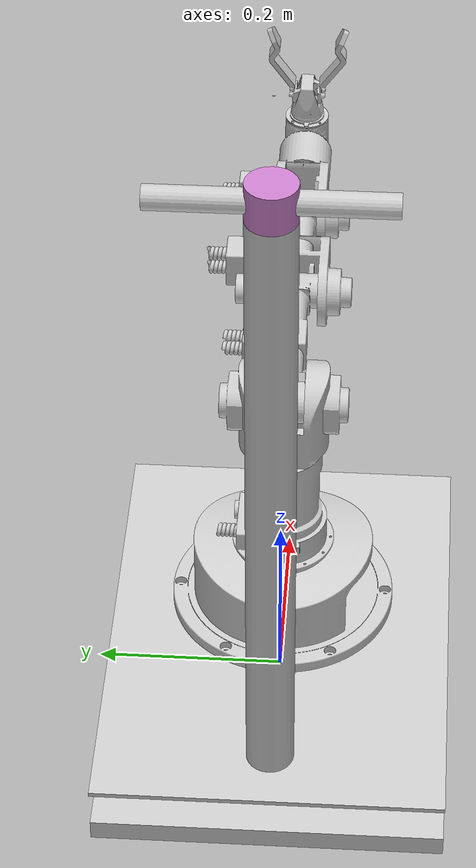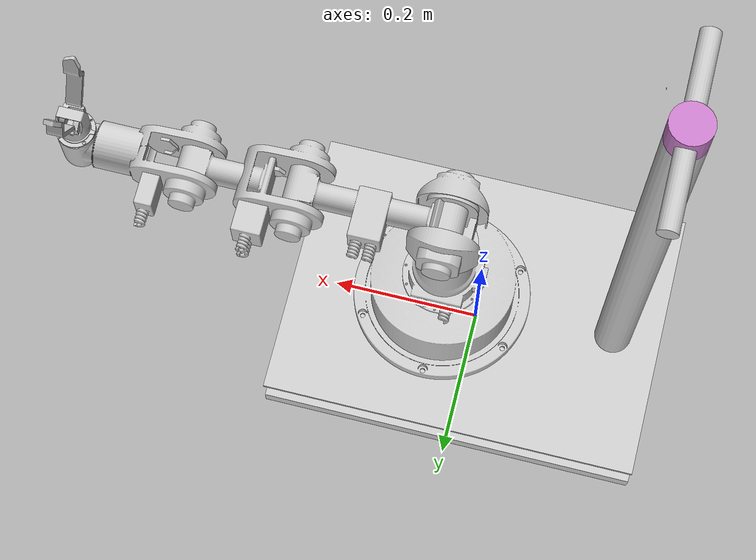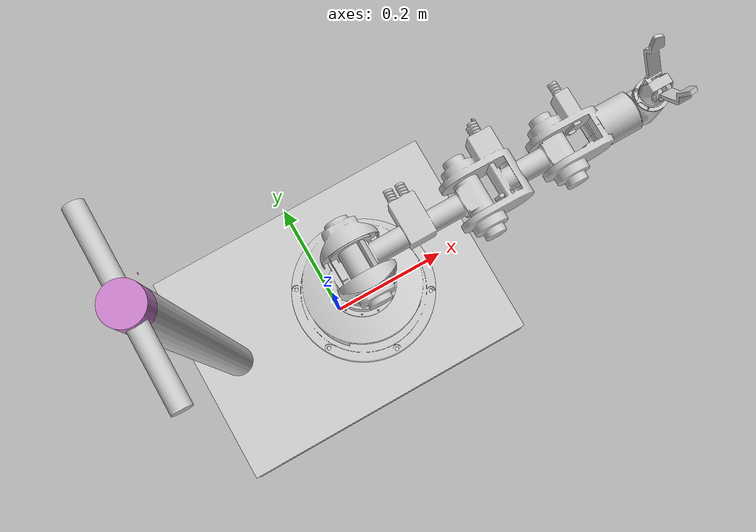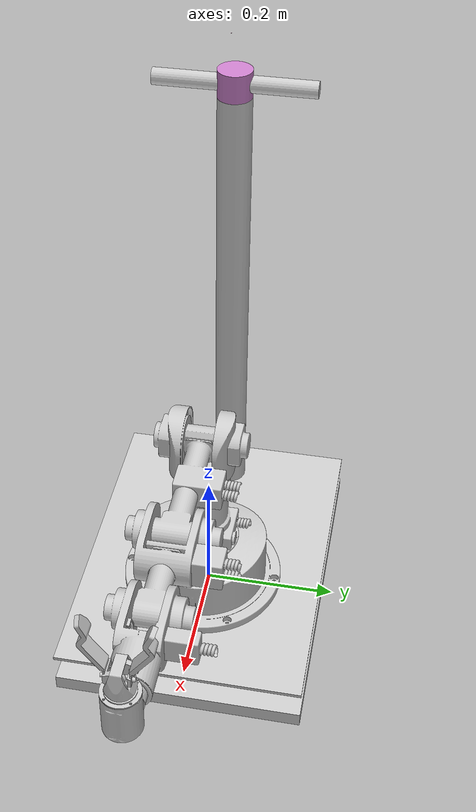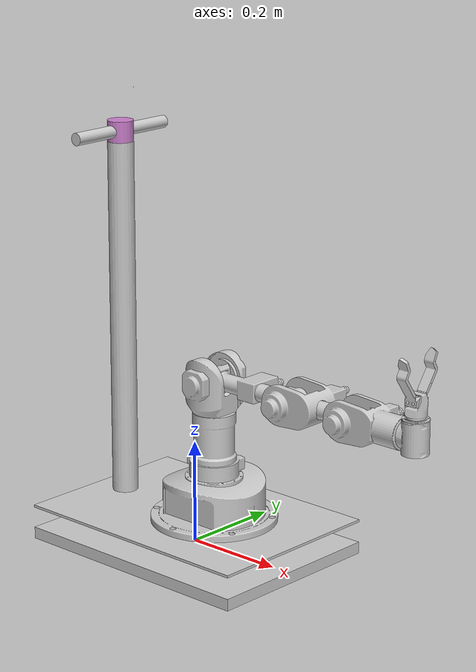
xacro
<?xml version="1.0"?>

<robot xmlns:sensor="http://playerstage.sourceforge.net/gazebo/xmlschema/#sensor"
  xmlns:controller="http://playerstage.sourceforge.net/gazebo/xmlschema/#controller"
  xmlns:interface="http://playerstage.sourceforge.net/gazebo/xmlschema/#interface"
  xmlns:xacro="http://ros.org/wiki/xacro"
  name="kurtana">

  <property name="M_PI" value="3.1415926535897931" />

  <!-- *** KURTana Rack *** -->

  <include filename="$(find kurt_description)/parts/kurtana_rack.urdf.xacro" />

  <!-- *** Microsoft Kinect *** -->

  <include filename="$(find kurt_description)/parts/kinect.urdf.xacro" />

  <joint name="kurtana_kinect_joint" type="fixed">
    <parent link="kurtana_pitchpole_link" />
    <child  link="kinect_link" />
    <origin xyz="${0.0730/2} 0 ${0.0720+kinect_gap}" rpy="0 0 0"/>
  </joint>

  <!-- *** Neuronics Katana Arm *** -->

  <include filename="$(find katana_description)/urdf/katana_450_6m90a_with_controlbox.urdf.xacro" />

  <joint name="kurtana_baseplate_controlbox_joint" type="fixed">
    <origin xyz="0.05 0 ${baseplate_height*1.5}" rpy="0 0 0" />
    <parent link="kurtana_baseplate_link" />
    <child link="katana_internal_controlbox_link" />
  </joint>

</robot>

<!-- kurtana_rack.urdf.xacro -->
<robot xmlns:sensor="http://playerstage.sourceforge.net/gazebo/xmlschema/#sensor"
       xmlns:controller="http://playerstage.sourceforge.net/gazebo/xmlschema/#controller"
       xmlns:interface="http://playerstage.sourceforge.net/gazebo/xmlschema/#interface"
       xmlns:xacro="http://ros.org/wiki/xacro"
       name="kurtana_rack">

  <property name="M_PI" value="3.1415926535897931" />

  <!-- all values measured by hand - maybe they need to be optimized later -->
  <property name="rackplate_length" value="0.51" />
  <property name="rackplate_width" value="0.368" />
  <property name="rackplate_height" value="0.023" />
  <property name="baseplate_length" value="0.51" />
  <property name="baseplate_width" value="0.368" />
  <property name="baseplate_height" value="0.005" />
  <property name="rackgap" value="0.055" />
  <property name="pole_radius" value="0.025"/>
  <property name="pole_length" value="0.70"/>
  <property name="poletop_radius" value="0.025"/>
  <property name="poletop_length" value="0.04"/>
  <property name="pitchpole_radius" value="0.012"/>
  <property name="pitchpole_length" value="0.23"/>
  <property name="kinect_length" value="0.30" />
  <property name="kinect_width" value="0.08" />
  <property name="kinect_height" value="0.08" />
  <property name="kinect_gap" value="0.015" />

<!-- *** KURTana Rack *** -->

  <link name="kurtana_rackplate_link">
      <visual>
        <origin xyz="0 0 0" rpy="0 0 0" />
        <geometry>
          <box size="${rackplate_length} ${rackplate_width} ${rackplate_height}" />
        </geometry>

        <material name="grey">
          <color rgba="0.8 0.8 0.8 1"/>
        </material>
      </visual>
      <collision>
        <origin xyz="0 0 0" rpy="0 0 0" />
        <geometry>
            <box size="${rackplate_length} ${rackplate_width} ${rackplate_height}" />
        </geometry>
      </collision>
      <inertial>
        <mass value="0.05" />
        <origin xyz="0.0 0.0 10.0" />
        <inertia ixx="1.0" ixy="0.0" ixz="0.0"
                 iyy="1.0" iyz="0.0"
                 izz="1.0" />
      </inertial>
  </link>

  <joint name="kurtana_baseplate_joint" type="fixed">
    <parent link="kurtana_rackplate_link"/>
    <child link="kurtana_baseplate_link"/>
    <origin xyz="0 0 0.055"/>
  </joint>

  <link name="kurtana_baseplate_link">
      <visual>
        <origin xyz="0 0 0" rpy="0 0 0" />
        <geometry>
          <box size="${baseplate_length} ${baseplate_width} ${baseplate_height}" />
        </geometry>

        <material name="grey" />
      </visual>
      <collision>
        <origin xyz="0 0 0" rpy="0 0 0" />
        <geometry>
          <box size="${baseplate_length} ${baseplate_width} ${baseplate_height}" />
        </geometry>
      </collision>
  </link>

   <joint name="kurtana_pole_joint" type="fixed">
    <parent link="kurtana_baseplate_link"/>
    <child link="kurtana_pole_link"/>
    <origin xyz="-0.19 0 0"/>
   </joint>

  <link name="kurtana_pole_link">
      <visual>
        <origin xyz="0 0 ${pole_length/2}" rpy="0 0 0" />
        <geometry>
         <cylinder radius="${pole_radius}" length="${pole_length}"/>
        </geometry>

        <material name="grey" />
      </visual>
      <collision>
        <origin xyz="0 0 ${pole_length/2}" rpy="0 0 0" />
        <geometry>
          <cylinder radius="${pole_radius}" length="${pole_length}"/>
        </geometry>
      </collision>
  </link>

  <joint name="kurtana_stretch_joint" type="prismatic">
    <parent link="kurtana_pole_link"/>
    <child link="kurtana_poletop_stretch_link"/>
    <origin xyz="0 0 ${pole_length}" rpy="0 0 0"/>
    <limit effort="1000.0" lower="0" upper="0.515" velocity="0.5"/>
    <origin rpy="0 0 0" xyz="0 0 0"/>
    <axis xyz="0 0 1"/>
  </joint>

 <link name="kurtana_poletop_stretch_link">
        <collision>
        <origin xyz="0 0 ${poletop_length/2}" rpy="0 0 0" />
        <geometry>
         <cylinder radius="${poletop_radius}" length="${poletop_length}"/>
        </geometry>
      </collision>
  </link>

   <joint name="kurtana_roll_joint" type="revolute">
    <parent link="kurtana_poletop_stretch_link"/>
    <child link="kurtana_poletop_roll_link"/>
    <origin xyz="0 0 0" rpy="0 0 0"/>
    <axis xyz="0 0 1"/>
    <limit effort="1000.0" lower="${-M_PI/2}" upper="${M_PI/2}" velocity="2.0"/>
  </joint>

  <link name="kurtana_poletop_roll_link">
      <visual>
        <origin xyz="0 0 ${poletop_length/2}" rpy="0 0 0" />
        <geometry>
          <cylinder radius="${poletop_radius}" length="${poletop_length}"/>
        </geometry>
        <material name="red">
          <color rgba="0.8 0.5 0.8 1"/>
        </material>
      </visual>
      <collision>
        <origin xyz="0 0 ${poletop_length/2}" rpy="0 0 0" />
        <geometry>
         <cylinder radius="${poletop_radius}" length="${poletop_length}"/>
        </geometry>
      </collision>
  </link>

  <joint name="kurtana_pitch_joint" type="revolute">
    <parent link="kurtana_poletop_roll_link" />
    <child link="kurtana_pitchpole_link" />
    <origin xyz="0 0 ${poletop_length/2}" rpy="0 0 0"/>
    <axis xyz="0 1 0"/>
    <limit effort="1000.0" lower="${-M_PI/2}" upper="${M_PI/2}" velocity="2.0"/>
  </joint>

  <link name="kurtana_pitchpole_link">
      <visual>
        <origin rpy="${-M_PI/2} 0 0" xyz="0 0 0"/>
        <geometry>
          <cylinder radius="${pitchpole_radius}" length="${pitchpole_length}"/>
        </geometry>
        <material name="grey" />
      </visual>
      <collision>
        <origin rpy="${-M_PI/2} 0 0" xyz="0 0 0"/>
        <geometry>
         <cylinder radius="${pitchpole_radius}" length="${pitchpole_length}"/>
        </geometry>
      </collision>
  </link>

</robot>

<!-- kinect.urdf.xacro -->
<robot xmlns:sensor="http://playerstage.sourceforge.net/gazebo/xmlschema/#sensor"
  xmlns:controller="http://playerstage.sourceforge.net/gazebo/xmlschema/#controller"
  xmlns:interface="http://playerstage.sourceforge.net/gazebo/xmlschema/#interface"
  xmlns:xacro="http://ros.org/wiki/xacro"
  name="kinect">

  <property name="M_PI" value="3.1415926535897931" />

  <link name="kinect_link">
    <inertial>
      <mass value="0.00001" />
      <origin xyz="0 0 0" />
      <inertia ixx="1.0" ixy="0.0" ixz="0.0"
        iyy="1.0" iyz="0.0"
        izz="1.0" />
    </inertial>

    <visual>
      <origin xyz=" 0 0 0 " rpy="0 0 0" />
      <geometry>
        <mesh filename="package://kurtana_description/meshes/kinect/kinect.dae"/>
      </geometry>
    </visual>

    <collision>
      <origin xyz="0.0 0.0 0.0" rpy="0 0 0" />
      <geometry>
        <box size="0.0730 .2760 0.0720"/>
      </geometry>
    </collision>

  </link>

  <joint name="kinect_depth_joint" type="fixed">
    <origin xyz="0 0.018 0" rpy="0 0 0" />
    <parent link="kinect_link" />
    <child link="kinect_depth_origin" />
  </joint>

  <link name="kinect_depth_origin">
    <inertial>
      <mass value="0.000001" />
      <origin xyz="0 0 0" />
      <inertia ixx="0.0001" ixy="0.0" ixz="0.0"
        iyy="0.0001" iyz="0.0"
        izz="0.0001" />
    </inertial>
  </link>

  <joint name="kinect_depth_optical_joint" type="fixed">
    <origin xyz="0 0 0" rpy="${-M_PI/2} 0 ${-M_PI/2}" />
    <parent link="kinect_depth_origin" />
    <child link="kinect_depth" />
  </joint>

  <link name="kinect_depth">
    <inertial>
      <mass value="0.000001" />
      <origin xyz="0 0 0" />
      <inertia ixx="0.0001" ixy="0.0" ixz="0.0"
        iyy="0.0001" iyz="0.0" izz="0.0001" />
    </inertial>
  </link>

  <joint name="kinect_rgb_joint" type="fixed">
    <origin xyz="0 -0.005 0" rpy="0 0 0" />
    <parent link="kinect_link" />
    <child link="kinect_rgb" />
  </joint>

  <link name="kinect_rgb">
    <inertial>
      <mass value="0.000001" />
      <origin xyz="0 0 0" />
      <inertia ixx="0.0001" ixy="0.0" ixz="0.0"
        iyy="0.0001" iyz="0.0"
        izz="0.0001" />
    </inertial>
  </link>

</robot>

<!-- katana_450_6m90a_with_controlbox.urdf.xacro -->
<robot xmlns:xacro="http://ros.org/wiki/xacro" name="katana_450_6m90a_with_controlbox">
  <xacro:include filename='$(find katana_description)/urdf/controlbox.urdf.xacro'/>
  <xacro:include filename='$(find katana_description)/urdf/katana_450_6m90a.urdf.xacro'/>
</robot>

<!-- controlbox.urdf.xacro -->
<robot xmlns:xacro="http://ros.org/wiki/xacro" >

  <xacro:property name="M_PI" value="3.1415926535897931" />
  <xacro:property name="controlbox_height" value="0.073" />

  <link name="katana_internal_controlbox_link">
    <visual>
      <origin xyz="0 0 0" rpy="0 0 ${M_PI}" />
      <geometry>
        <mesh filename="package://katana_description/meshes/katana/katana_internal_controlbox.stl" />
      </geometry>

      <material name="grey">
        <color rgba="0.8 0.8 0.8 1"/>
      </material>
    </visual>
    <collision>
      <origin xyz="0 0 0" rpy="0 0 ${M_PI}" />
      <geometry>
        <mesh filename="package://katana_description/meshes/katana/convex/katana_internal_controlbox_convex.stl" />
      </geometry>
    </collision>
    <inertial>
      <mass value="4.47057045" />
      <origin xyz="0.000024 -0.006508 0.030555" />
      <inertia ixx="0.013760086" ixy="-0.000000539" ixz="-0.000000442"
        iyy="0.015251808" iyz="0.000361753"
        izz="0.023409309" />
    </inertial>
  </link>

  <joint name="katana_base_joint" type="fixed">
    <parent link="katana_internal_controlbox_link"/>
    <child link="katana_base_link"/>
    <origin xyz="0 0 ${controlbox_height}"/>
  </joint>

  <gazebo reference="katana_internal_controlbox_link">
    <material value="Gazebo/Grey" />
  </gazebo>
</robot>

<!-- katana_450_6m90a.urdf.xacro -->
<robot xmlns:xacro="http://ros.org/wiki/xacro" name="katana_450_6m90a">

  <xacro:include filename='$(find katana_description)/urdf/transmissions.urdf.xacro'/>
  <xacro:include filename='$(find katana_description)/urdf/gazebo.urdf.xacro'/>

  <xacro:property name="M_PI" value="3.1415926535897931" />

  <!-- all values from the katana manual -->
  <xacro:property name="base_height" value="0.2015" />
  <xacro:property name="link2_length" value="0.19" />
  <xacro:property name="link3_length" value="0.139" />
  <xacro:property name="link4_length" value="0.1473" />
  <xacro:property name="link5_length" value="0.1505" />
  <xacro:property name="tool_frame_offset" value="0.11" />

  <!-- All inertial values (mass, center of mass and inertia tensor) have been
       calculated from the meshes using MeshLab -->
  <!-- the effort limits have been measured experimentally from the maximum effort the Gazebo controller
       uses in normal conditions -->

  <link name="katana_base_link">
    <visual>
      <origin xyz="0 0 0" rpy="0 0 0" />
      <geometry>
        <mesh filename="package://katana_description/meshes/katana/katana_base_link.stl"/>
      </geometry>

      <material name="grey">
        <color rgba="0.8 0.8 0.8 1"/>
      </material>
    </visual>
    <collision>
      <origin xyz="0 0 0" rpy="0 0 0" />
      <geometry>
        <mesh filename="package://katana_description/meshes/katana/convex/katana_base_link_convex.stl"/>
      </geometry>
    </collision>
    <inertial>
      <mass value="1.4047990875" />
      <origin xyz="-0.000327 0.000908 0.058457"/>
      <inertia ixx="0.003000703" ixy="0.000000864" ixz="-0.000011312"
        iyy="0.002974822" iyz="0.000036294"
        izz="0.001434739" />
    </inertial>
  </link>

  <joint name="katana_motor1_pan_joint" type="revolute">
    <!-- Joint 1 in Katana Manual -->
    <parent link="katana_base_link"/>
    <child link="katana_motor1_pan_link" />
    <origin xyz="0 0 ${base_height}" rpy="0 0 0"/>
    <axis xyz="0 0 1"/>
    <limit effort="1.5" lower="-3.025528" upper="2.891097" velocity="2.208932"/>
  </joint>

  <link name="katana_motor1_pan_link">
    <visual>
      <origin xyz="0 0 ${-base_height}" rpy="0 0 0" />
      <geometry>
        <mesh filename="package://katana_description/meshes/katana/katana_motor1_pan_link.stl"/>
      </geometry>

      <material name="grey" />
    </visual>
    <collision>
      <origin xyz="0 0 ${-base_height}" rpy="0 0 0" />
      <geometry>
        <mesh filename="package://katana_description/meshes/katana/convex/katana_motor1_pan_link_convex.stl"/>
      </geometry>
    </collision>
    <inertial>
      <mass value="0.74793301875" />
      <origin xyz="-0.000410 -0.001285 -0.016774" />
      <inertia ixx="0.001737241" ixy="0.000000421" ixz="0.000000650"
        iyy="0.000998782" iyz="0.000016114"
        izz="0.001349170" />
    </inertial>
  </link>

  <joint name="katana_motor2_lift_joint" type="revolute">
    <!-- Joint 2 in Katana Manual -->
    <parent link="katana_motor1_pan_link" />
    <child link="katana_motor2_lift_link" />
    <origin xyz="0 0 0" rpy="${M_PI/2} 0 0"/>
    <axis xyz="0 0 1"/>
    <limit effort="0.6" lower="-0.135228" upper="2.168572"  velocity="1.190799"/>
  </joint>

  <link name="katana_motor2_lift_link">
      <visual>
        <origin rpy="${-M_PI/2} 0 0" xyz="0 0 0"/>
        <geometry>
          <mesh filename="package://katana_description/meshes/katana/katana_motor2_lift_link.stl"/>
        </geometry>

        <material name="grey" />
      </visual>
      <collision>
        <origin rpy="${-M_PI/2} 0 0" xyz="0 0 0"/>
        <geometry>
          <mesh filename="package://katana_description/meshes/katana/convex/katana_motor2_lift_link_convex.stl"/>
        </geometry>
      </collision>
      <inertial>
        <mass value="0.80174941875" />
        <origin xyz="0.092420 0.005283 0.000172"/>
        <inertia ixx="0.000478252" ixy="0.000081166" ixz="0.000003961"
          iyy="0.004314636" iyz="0.000000332"
          izz="0.004625444" />
      </inertial>
  </link>

  <joint name="katana_motor3_lift_joint" type="revolute">
    <!-- Joint 3 in Katana Manual -->
    <parent link="katana_motor2_lift_link" />
    <child  link="katana_motor3_lift_link" />
    <origin xyz="${link2_length} 0 0" rpy="0 0 0"/>
    <axis xyz="0 0 1"/>
    <!-- unexplicably, the measured velocity limit of this motor is exactly half of what vel_enc2rad(180) says -->
    <limit effort="0.25" lower="-2.221804" upper="2.054223"  velocity="1.190799"/>
  </joint>

  <link name="katana_motor3_lift_link">
      <visual>
        <origin rpy="${-M_PI/2} 0 0" xyz="0 0 0"/>
        <geometry>
          <mesh filename="package://katana_description/meshes/katana/katana_motor3_lift_link.stl"/>
        </geometry>

        <material name="grey" />
      </visual>
      <collision>
        <origin rpy="${-M_PI/2} 0 0" xyz="0 0 0"/>
        <geometry>
          <mesh filename="package://katana_description/meshes/katana/convex/katana_motor3_lift_link_convex.stl"/>
        </geometry>
      </collision>
      <inertial>
        <mass value="0.79241664375" />
        <origin xyz="0.058036 0.008963 -0.000187"/>
        <inertia ixx="0.001156089" ixy="0.000112877" ixz="-0.000004398"
          iyy="0.002305646" iyz="-0.000000036"
          izz="0.003128648" />
      </inertial>
    </link>

  <joint name="katana_motor4_lift_joint" type="revolute">
    <!-- Joint 4 in Katana Manual -->
    <parent link="katana_motor3_lift_link" />
    <child  link="katana_motor4_lift_link" />
    <origin rpy="${M_PI} 0 0" xyz="${link3_length} 0 0"/>
    <axis xyz="0 0 1"/>
    <limit effort="0.1" lower="-2.033309" upper="1.876133"  velocity="2.208932"/>
  </joint>

  <link name="katana_motor4_lift_link">
      <visual>
        <origin rpy="${M_PI/2} 0 0" xyz="0 0 0"/>
        <geometry>
          <mesh filename="package://katana_description/meshes/katana/katana_motor4_lift_link.stl"/>
        </geometry>

        <material name="grey" />
      </visual>
      <collision>
        <origin rpy="${M_PI/2} 0 0" xyz="0 0 0"/>
        <geometry>
          <mesh filename="package://katana_description/meshes/katana/convex/katana_motor4_lift_link_convex.stl"/>
        </geometry>
      </collision>
      <inertial>
        <mass value="0.69149323125" />
        <origin xyz="0.050401 0.005807 0.000000"/>
        <inertia ixx="0.000765999" ixy="0.000045260" ixz="-0.000001210"
          iyy="0.001504115" iyz="0.000000147"
          izz="0.001887277" />
      </inertial>
    </link>

  <joint name="katana_motor5_wrist_roll_joint" type="revolute">
    <!-- Joint 5 in Katana Manual -->
    <parent link="katana_motor4_lift_link" />
    <child  link="katana_motor5_wrist_roll_link" />
    <origin rpy="${M_PI/2} 0 ${-M_PI/2}" xyz="${link4_length} 0 0"/>
    <axis xyz="0 0 1"/>
    <limit effort="0.01" lower="-2.993240" upper="2.870985"  velocity="2.208932"/>
  </joint>

  <link name="katana_motor5_wrist_roll_link">
      <visual>
        <origin rpy="0 ${M_PI/2} 0" xyz="0 0 0"/>
        <geometry>
          <mesh filename="package://katana_description/meshes/katana/katana_motor5_wrist_roll_link.stl"/>
        </geometry>

        <material name="grey" />
      </visual>
      <collision>
        <origin rpy="0 ${M_PI/2} 0" xyz="0 0 0"/>
        <geometry>
          <mesh filename="package://katana_description/meshes/katana/convex/katana_motor5_wrist_roll_link_convex.stl"/>
        </geometry>
      </collision>
      <inertial>
        <mass value="0.25622555625" />
        <origin xyz="-0.003140899 0.000013920 0.001680144"/>
        <inertia ixx="0.000120481" ixy="0.000000015" ixz="-0.000001089"
          iyy="0.000132130" iyz="-0.000000124"
          izz="0.000093522" />
      </inertial>
    </link>

  <joint name="katana_gripper_joint" type="fixed">
    <parent link="katana_motor5_wrist_roll_link" />
    <child link="katana_gripper_link" />
    <origin rpy="0 0 0" xyz="0.0323 0 0"/>
  </joint>

  <link name="katana_gripper_link">
      <visual>
        <origin rpy="0 ${M_PI} 0" xyz="0 0 0"/>
        <geometry>
          <mesh filename="package://katana_description/meshes/katana/katana_gripper_link.stl"/>
        </geometry>

        <material name="grey" />
      </visual>
      <collision>
        <origin rpy="0 ${M_PI} 0" xyz="0 0 0"/>
        <geometry>
          <mesh filename="package://katana_description/meshes/katana/convex/katana_gripper_link_convex.stl"/>
        </geometry>
      </collision>
      <inertial>
        <mass value="0.0552136183596" />
        <origin xyz="-0.014379 -0.000000 0.000006"/>
        <inertia ixx="0.000011468" ixy="0.000000000" ixz="0.000000007"
          iyy="0.000013830" iyz="0.000000000"
          izz="0.000011290" /></inertial>
    </link>

  <xacro:macro name="finger" params="prefix rotate">
    <joint name="katana_${prefix}_finger_joint" type="revolute">
      <parent link="katana_gripper_link" />
      <child  link="katana_${prefix}_finger_link" />
      <origin rpy="${rotate} 0 0" xyz="0.034 0 0"/>
      <axis xyz="0 0 1"/>
      <limit effort="0.5" lower="-0.44" upper="0.30"  velocity="0.718834"/>
   </joint>

    <link name="katana_${prefix}_finger_link">
        <visual>
          <origin rpy="0 ${M_PI} 0" xyz="0 0 0"/>
          <geometry>
            <mesh filename="package://katana_description/meshes/katana/katana_gripper_${prefix}_finger.stl"/>
          </geometry>

          <material name="grey" />
        </visual>
        <collision>
          <origin rpy="0 ${M_PI} 0" xyz="0 0 0"/>
          <geometry>
            <mesh filename="package://katana_description/meshes/katana/convex/katana_gripper_${prefix}_finger_convex.stl"/>
          </geometry>
        </collision>
        <inertial>
          <mass value="0.0251722230462" />
          <origin xyz="${0.034 + (-0.032216)} 0.025167 -.001603"/>
          <inertia ixx="0.000005990" ixy="0.000008473" ixz="0.000001448"
            iyy="0.000019757" iyz="-0.000000996"
            izz="0.000023588" />
        </inertial>
      </link>
    </xacro:macro>

  <xacro:finger prefix="r" rotate="0" />
  <xacro:finger prefix="l" rotate="${M_PI}" />

  <joint name="katana_gripper_tool_frame_joint" type="fixed">
    <parent link="katana_motor5_wrist_roll_link"/>
    <child link="katana_gripper_tool_frame" />
    <origin xyz="${tool_frame_offset} 0 0" rpy="0 ${M_PI/2} 0"/>
  </joint>

  <link name="katana_gripper_tool_frame">
    <!-- This is the coordinate system of the end effector (this is the position
         used in IK); there is no actual arm part attached to this link -->

    <!-- The fake geometry here is only present to work around https://github.com/ros-planning/moveit_core/issues/158 -->
    <visual>
      <origin rpy="0 0 0" xyz="0 0 -${tool_frame_offset}"/>
      <geometry>
        <box size="0.01 0.01 0.01"/>
      </geometry>
      <material name="grey" />
    </visual>
    <collision>
      <origin rpy="0 0 0" xyz="0 0 -${tool_frame_offset}"/>
      <geometry>
        <box size="0.01 0.01 0.01"/>
      </geometry>
      <material name="grey" />
    </collision>
    <inertial>
      <mass value="0.0012" />
      <origin xyz="0 0 0"/>
      <inertia ixx="2e-8" ixy="0.0" ixz="0.0"
        iyy="2e-8" iyz="0.0"
        izz="2e-8" />
    </inertial>
  </link>
</robot>
